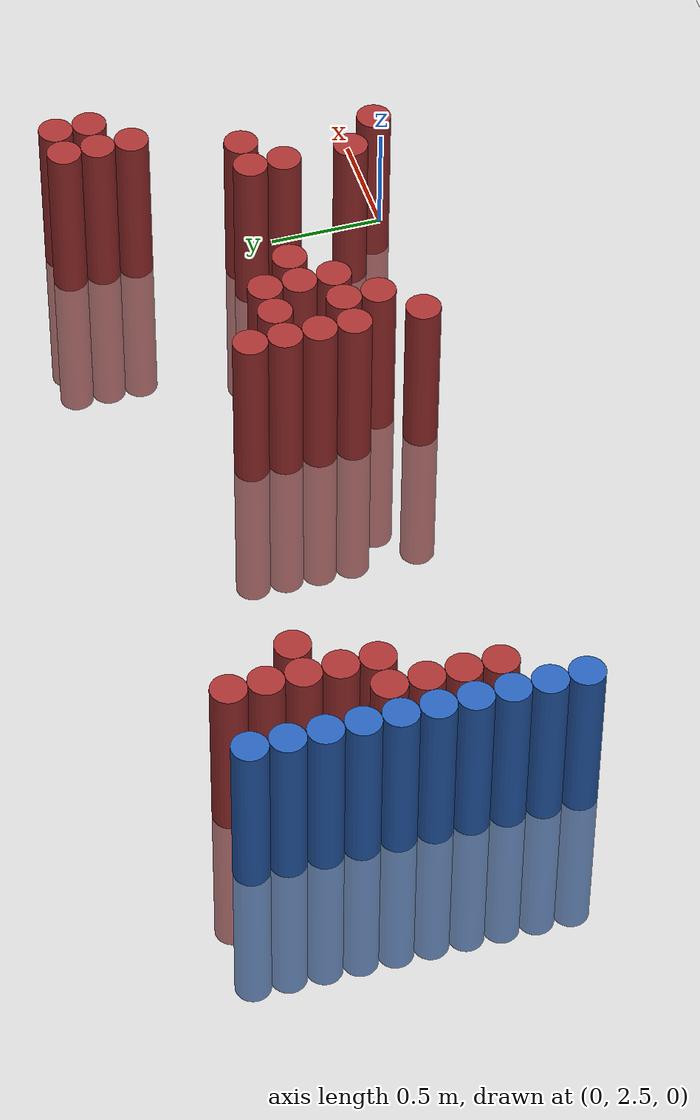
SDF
<sdf version="1.6">
 <world name="default">
  <model name="ground_plane">
   <static>1</static>
   <link name="link">
    <collision name="collision">
     <geometry><plane><normal>0 0 1</normal><size>100 100</size></plane></geometry>
     <surface><friction><ode><mu>100</mu><mu2>50</mu2></ode></friction></surface>
    </collision>
    <visual name="visual">
     <cast_shadows>0</cast_shadows>
     <geometry><plane><normal>0 0 1</normal><size>100 100</size></plane></geometry>
     <material>
      <script><uri>file://media/materials/scripts/gazebo.material</uri><name>Gazebo/Grey</name></script>
     </material>
    </visual>
   </link>
  </model>
  <model name="unit_cylinder_151">
   <static>1</static>
   <pose>-3.425000 2.725000 0.000000 0.000000 0.000000 0.000000</pose>
   <link name="link">
    <inertial>
     <mass>1</mass>
     <inertia><ixx>0.145833</ixx><ixy>0</ixy><ixz>0</ixz><iyy>0.145833</iyy><iyz>0</iyz><izz>0.125</izz></inertia>
    </inertial>
    <collision name="collision">
     <geometry><cylinder><radius>0.075000</radius><length>1.5</length></cylinder></geometry>
    </collision>
    <visual name="visual">
     <geometry><cylinder><radius>0.075000</radius><length>1.5</length></cylinder></geometry>
     <material>
      <ambient>0.152000 0.379000 0.720000 1</ambient>
      <diffuse>0.152000 0.379000 0.720000 1</diffuse>
     </material>
     <material>
      <script><name>Gazebo/Grey</name><uri>file://media/materials/scripts/gazebo.material</uri></script>
     </material>
    </visual>
   </link>
  </model>
  <model name="unit_cylinder_153">
   <static>1</static>
   <pose>-3.425000 2.875000 0.000000 0.000000 0.000000 0.000000</pose>
   <link name="link">
    <inertial>
     <mass>1</mass>
     <inertia><ixx>0.145833</ixx><ixy>0</ixy><ixz>0</ixz><iyy>0.145833</iyy><iyz>0</iyz><izz>0.125</izz></inertia>
    </inertial>
    <collision name="collision">
     <geometry><cylinder><radius>0.075000</radius><length>1.5</length></cylinder></geometry>
    </collision>
    <visual name="visual">
     <geometry><cylinder><radius>0.075000</radius><length>1.5</length></cylinder></geometry>
     <material>
      <ambient>0.152000 0.379000 0.720000 1</ambient>
      <diffuse>0.152000 0.379000 0.720000 1</diffuse>
     </material>
     <material>
      <script><name>Gazebo/Grey</name><uri>file://media/materials/scripts/gazebo.material</uri></script>
     </material>
    </visual>
   </link>
  </model>
  <model name="unit_cylinder_155">
   <static>1</static>
   <pose>-3.425000 3.025000 0.000000 0.000000 0.000000 0.000000</pose>
   <link name="link">
    <inertial>
     <mass>1</mass>
     <inertia><ixx>0.145833</ixx><ixy>0</ixy><ixz>0</ixz><iyy>0.145833</iyy><iyz>0</iyz><izz>0.125</izz></inertia>
    </inertial>
    <collision name="collision">
     <geometry><cylinder><radius>0.075000</radius><length>1.5</length></cylinder></geometry>
    </collision>
    <visual name="visual">
     <geometry><cylinder><radius>0.075000</radius><length>1.5</length></cylinder></geometry>
     <material>
      <ambient>0.152000 0.379000 0.720000 1</ambient>
      <diffuse>0.152000 0.379000 0.720000 1</diffuse>
     </material>
     <material>
      <script><name>Gazebo/Grey</name><uri>file://media/materials/scripts/gazebo.material</uri></script>
     </material>
    </visual>
   </link>
  </model>
  <model name="unit_cylinder_157">
   <static>1</static>
   <pose>-3.425000 3.175000 0.000000 0.000000 0.000000 0.000000</pose>
   <link name="link">
    <inertial>
     <mass>1</mass>
     <inertia><ixx>0.145833</ixx><ixy>0</ixy><ixz>0</ixz><iyy>0.145833</iyy><iyz>0</iyz><izz>0.125</izz></inertia>
    </inertial>
    <collision name="collision">
     <geometry><cylinder><radius>0.075000</radius><length>1.5</length></cylinder></geometry>
    </collision>
    <visual name="visual">
     <geometry><cylinder><radius>0.075000</radius><length>1.5</length></cylinder></geometry>
     <material>
      <ambient>0.152000 0.379000 0.720000 1</ambient>
      <diffuse>0.152000 0.379000 0.720000 1</diffuse>
     </material>
     <material>
      <script><name>Gazebo/Grey</name><uri>file://media/materials/scripts/gazebo.material</uri></script>
     </material>
    </visual>
   </link>
  </model>
  <model name="unit_cylinder_159">
   <static>1</static>
   <pose>-3.425000 3.325000 0.000000 0.000000 0.000000 0.000000</pose>
   <link name="link">
    <inertial>
     <mass>1</mass>
     <inertia><ixx>0.145833</ixx><ixy>0</ixy><ixz>0</ixz><iyy>0.145833</iyy><iyz>0</iyz><izz>0.125</izz></inertia>
    </inertial>
    <collision name="collision">
     <geometry><cylinder><radius>0.075000</radius><length>1.5</length></cylinder></geometry>
    </collision>
    <visual name="visual">
     <geometry><cylinder><radius>0.075000</radius><length>1.5</length></cylinder></geometry>
     <material>
      <ambient>0.152000 0.379000 0.720000 1</ambient>
      <diffuse>0.152000 0.379000 0.720000 1</diffuse>
     </material>
     <material>
      <script><name>Gazebo/Grey</name><uri>file://media/materials/scripts/gazebo.material</uri></script>
     </material>
    </visual>
   </link>
  </model>
  <model name="unit_cylinder_161">
   <static>1</static>
   <pose>-3.425000 3.475000 0.000000 0.000000 0.000000 0.000000</pose>
   <link name="link">
    <inertial>
     <mass>1</mass>
     <inertia><ixx>0.145833</ixx><ixy>0</ixy><ixz>0</ixz><iyy>0.145833</iyy><iyz>0</iyz><izz>0.125</izz></inertia>
    </inertial>
    <collision name="collision">
     <geometry><cylinder><radius>0.075000</radius><length>1.5</length></cylinder></geometry>
    </collision>
    <visual name="visual">
     <geometry><cylinder><radius>0.075000</radius><length>1.5</length></cylinder></geometry>
     <material>
      <ambient>0.152000 0.379000 0.720000 1</ambient>
      <diffuse>0.152000 0.379000 0.720000 1</diffuse>
     </material>
     <material>
      <script><name>Gazebo/Grey</name><uri>file://media/materials/scripts/gazebo.material</uri></script>
     </material>
    </visual>
   </link>
  </model>
  <model name="unit_cylinder_163">
   <static>1</static>
   <pose>-3.425000 3.625000 0.000000 0.000000 0.000000 0.000000</pose>
   <link name="link">
    <inertial>
     <mass>1</mass>
     <inertia><ixx>0.145833</ixx><ixy>0</ixy><ixz>0</ixz><iyy>0.145833</iyy><iyz>0</iyz><izz>0.125</izz></inertia>
    </inertial>
    <collision name="collision">
     <geometry><cylinder><radius>0.075000</radius><length>1.5</length></cylinder></geometry>
    </collision>
    <visual name="visual">
     <geometry><cylinder><radius>0.075000</radius><length>1.5</length></cylinder></geometry>
     <material>
      <ambient>0.152000 0.379000 0.720000 1</ambient>
      <diffuse>0.152000 0.379000 0.720000 1</diffuse>
     </material>
     <material>
      <script><name>Gazebo/Grey</name><uri>file://media/materials/scripts/gazebo.material</uri></script>
     </material>
    </visual>
   </link>
  </model>
  <model name="unit_cylinder_165">
   <static>1</static>
   <pose>-3.425000 3.775000 0.000000 0.000000 0.000000 0.000000</pose>
   <link name="link">
    <inertial>
     <mass>1</mass>
     <inertia><ixx>0.145833</ixx><ixy>0</ixy><ixz>0</ixz><iyy>0.145833</iyy><iyz>0</iyz><izz>0.125</izz></inertia>
    </inertial>
    <collision name="collision">
     <geometry><cylinder><radius>0.075000</radius><length>1.5</length></cylinder></geometry>
    </collision>
    <visual name="visual">
     <geometry><cylinder><radius>0.075000</radius><length>1.5</length></cylinder></geometry>
     <material>
      <ambient>0.152000 0.379000 0.720000 1</ambient>
      <diffuse>0.152000 0.379000 0.720000 1</diffuse>
     </material>
     <material>
      <script><name>Gazebo/Grey</name><uri>file://media/materials/scripts/gazebo.material</uri></script>
     </material>
    </visual>
   </link>
  </model>
  <model name="unit_cylinder_167">
   <static>1</static>
   <pose>-3.425000 3.925000 0.000000 0.000000 0.000000 0.000000</pose>
   <link name="link">
    <inertial>
     <mass>1</mass>
     <inertia><ixx>0.145833</ixx><ixy>0</ixy><ixz>0</ixz><iyy>0.145833</iyy><iyz>0</iyz><izz>0.125</izz></inertia>
    </inertial>
    <collision name="collision">
     <geometry><cylinder><radius>0.075000</radius><length>1.5</length></cylinder></geometry>
    </collision>
    <visual name="visual">
     <geometry><cylinder><radius>0.075000</radius><length>1.5</length></cylinder></geometry>
     <material>
      <ambient>0.152000 0.379000 0.720000 1</ambient>
      <diffuse>0.152000 0.379000 0.720000 1</diffuse>
     </material>
     <material>
      <script><name>Gazebo/Grey</name><uri>file://media/materials/scripts/gazebo.material</uri></script>
     </material>
    </visual>
   </link>
  </model>
  <model name="unit_cylinder_169">
   <static>1</static>
   <pose>-3.425000 4.075000 0.000000 0.000000 0.000000 0.000000</pose>
   <link name="link">
    <inertial>
     <mass>1</mass>
     <inertia><ixx>0.145833</ixx><ixy>0</ixy><ixz>0</ixz><iyy>0.145833</iyy><iyz>0</iyz><izz>0.125</izz></inertia>
    </inertial>
    <collision name="collision">
     <geometry><cylinder><radius>0.075000</radius><length>1.5</length></cylinder></geometry>
    </collision>
    <visual name="visual">
     <geometry><cylinder><radius>0.075000</radius><length>1.5</length></cylinder></geometry>
     <material>
      <ambient>0.152000 0.379000 0.720000 1</ambient>
      <diffuse>0.152000 0.379000 0.720000 1</diffuse>
     </material>
     <material>
      <script><name>Gazebo/Grey</name><uri>file://media/materials/scripts/gazebo.material</uri></script>
     </material>
    </visual>
   </link>
  </model>
  <model name="unit_cylinder_239">
   <static>1</static>
   <pose>-3.425000 2.725000 0.000000 0.000000 0.000000 0.000000</pose>
   <link name="link">
    <inertial>
     <mass>1</mass>
     <inertia><ixx>0.145833</ixx><ixy>0</ixy><ixz>0</ixz><iyy>0.145833</iyy><iyz>0</iyz><izz>0.125</izz></inertia>
    </inertial>
    <collision name="collision">
     <geometry><cylinder><radius>0.075000</radius><length>1.5</length></cylinder></geometry>
    </collision>
    <visual name="visual">
     <geometry><cylinder><radius>0.075000</radius><length>1.5</length></cylinder></geometry>
     <material>
      <ambient>0.152000 0.379000 0.720000 1</ambient>
      <diffuse>0.152000 0.379000 0.720000 1</diffuse>
     </material>
     <material>
      <script><name>Gazebo/Grey</name><uri>file://media/materials/scripts/gazebo.material</uri></script>
     </material>
    </visual>
   </link>
  </model>
  <model name="unit_cylinder_240">
   <static>1</static>
   <pose>-3.425000 2.875000 0.000000 0.000000 0.000000 0.000000</pose>
   <link name="link">
    <inertial>
     <mass>1</mass>
     <inertia><ixx>0.145833</ixx><ixy>0</ixy><ixz>0</ixz><iyy>0.145833</iyy><iyz>0</iyz><izz>0.125</izz></inertia>
    </inertial>
    <collision name="collision">
     <geometry><cylinder><radius>0.075000</radius><length>1.5</length></cylinder></geometry>
    </collision>
    <visual name="visual">
     <geometry><cylinder><radius>0.075000</radius><length>1.5</length></cylinder></geometry>
     <material>
      <ambient>0.152000 0.379000 0.720000 1</ambient>
      <diffuse>0.152000 0.379000 0.720000 1</diffuse>
     </material>
     <material>
      <script><name>Gazebo/Grey</name><uri>file://media/materials/scripts/gazebo.material</uri></script>
     </material>
    </visual>
   </link>
  </model>
  <model name="unit_cylinder_241">
   <static>1</static>
   <pose>-3.425000 3.025000 0.000000 0.000000 0.000000 0.000000</pose>
   <link name="link">
    <inertial>
     <mass>1</mass>
     <inertia><ixx>0.145833</ixx><ixy>0</ixy><ixz>0</ixz><iyy>0.145833</iyy><iyz>0</iyz><izz>0.125</izz></inertia>
    </inertial>
    <collision name="collision">
     <geometry><cylinder><radius>0.075000</radius><length>1.5</length></cylinder></geometry>
    </collision>
    <visual name="visual">
     <geometry><cylinder><radius>0.075000</radius><length>1.5</length></cylinder></geometry>
     <material>
      <ambient>0.152000 0.379000 0.720000 1</ambient>
      <diffuse>0.152000 0.379000 0.720000 1</diffuse>
     </material>
     <material>
      <script><name>Gazebo/Grey</name><uri>file://media/materials/scripts/gazebo.material</uri></script>
     </material>
    </visual>
   </link>
  </model>
  <model name="unit_cylinder_242">
   <static>1</static>
   <pose>-3.425000 3.175000 0.000000 0.000000 0.000000 0.000000</pose>
   <link name="link">
    <inertial>
     <mass>1</mass>
     <inertia><ixx>0.145833</ixx><ixy>0</ixy><ixz>0</ixz><iyy>0.145833</iyy><iyz>0</iyz><izz>0.125</izz></inertia>
    </inertial>
    <collision name="collision">
     <geometry><cylinder><radius>0.075000</radius><length>1.5</length></cylinder></geometry>
    </collision>
    <visual name="visual">
     <geometry><cylinder><radius>0.075000</radius><length>1.5</length></cylinder></geometry>
     <material>
      <ambient>0.152000 0.379000 0.720000 1</ambient>
      <diffuse>0.152000 0.379000 0.720000 1</diffuse>
     </material>
     <material>
      <script><name>Gazebo/Grey</name><uri>file://media/materials/scripts/gazebo.material</uri></script>
     </material>
    </visual>
   </link>
  </model>
  <model name="unit_cylinder_243">
   <static>1</static>
   <pose>-3.425000 3.325000 0.000000 0.000000 0.000000 0.000000</pose>
   <link name="link">
    <inertial>
     <mass>1</mass>
     <inertia><ixx>0.145833</ixx><ixy>0</ixy><ixz>0</ixz><iyy>0.145833</iyy><iyz>0</iyz><izz>0.125</izz></inertia>
    </inertial>
    <collision name="collision">
     <geometry><cylinder><radius>0.075000</radius><length>1.5</length></cylinder></geometry>
    </collision>
    <visual name="visual">
     <geometry><cylinder><radius>0.075000</radius><length>1.5</length></cylinder></geometry>
     <material>
      <ambient>0.152000 0.379000 0.720000 1</ambient>
      <diffuse>0.152000 0.379000 0.720000 1</diffuse>
     </material>
     <material>
      <script><name>Gazebo/Grey</name><uri>file://media/materials/scripts/gazebo.material</uri></script>
     </material>
    </visual>
   </link>
  </model>
  <model name="unit_cylinder_244">
   <static>1</static>
   <pose>-3.425000 3.475000 0.000000 0.000000 0.000000 0.000000</pose>
   <link name="link">
    <inertial>
     <mass>1</mass>
     <inertia><ixx>0.145833</ixx><ixy>0</ixy><ixz>0</ixz><iyy>0.145833</iyy><iyz>0</iyz><izz>0.125</izz></inertia>
    </inertial>
    <collision name="collision">
     <geometry><cylinder><radius>0.075000</radius><length>1.5</length></cylinder></geometry>
    </collision>
    <visual name="visual">
     <geometry><cylinder><radius>0.075000</radius><length>1.5</length></cylinder></geometry>
     <material>
      <ambient>0.152000 0.379000 0.720000 1</ambient>
      <diffuse>0.152000 0.379000 0.720000 1</diffuse>
     </material>
     <material>
      <script><name>Gazebo/Grey</name><uri>file://media/materials/scripts/gazebo.material</uri></script>
     </material>
    </visual>
   </link>
  </model>
  <model name="unit_cylinder_245">
   <static>1</static>
   <pose>-3.425000 3.625000 0.000000 0.000000 0.000000 0.000000</pose>
   <link name="link">
    <inertial>
     <mass>1</mass>
     <inertia><ixx>0.145833</ixx><ixy>0</ixy><ixz>0</ixz><iyy>0.145833</iyy><iyz>0</iyz><izz>0.125</izz></inertia>
    </inertial>
    <collision name="collision">
     <geometry><cylinder><radius>0.075000</radius><length>1.5</length></cylinder></geometry>
    </collision>
    <visual name="visual">
     <geometry><cylinder><radius>0.075000</radius><length>1.5</length></cylinder></geometry>
     <material>
      <ambient>0.152000 0.379000 0.720000 1</ambient>
      <diffuse>0.152000 0.379000 0.720000 1</diffuse>
     </material>
     <material>
      <script><name>Gazebo/Grey</name><uri>file://media/materials/scripts/gazebo.material</uri></script>
     </material>
    </visual>
   </link>
  </model>
  <model name="unit_cylinder_246">
   <static>1</static>
   <pose>-3.425000 3.775000 0.000000 0.000000 0.000000 0.000000</pose>
   <link name="link">
    <inertial>
     <mass>1</mass>
     <inertia><ixx>0.145833</ixx><ixy>0</ixy><ixz>0</ixz><iyy>0.145833</iyy><iyz>0</iyz><izz>0.125</izz></inertia>
    </inertial>
    <collision name="collision">
     <geometry><cylinder><radius>0.075000</radius><length>1.5</length></cylinder></geometry>
    </collision>
    <visual name="visual">
     <geometry><cylinder><radius>0.075000</radius><length>1.5</length></cylinder></geometry>
     <material>
      <ambient>0.152000 0.379000 0.720000 1</ambient>
      <diffuse>0.152000 0.379000 0.720000 1</diffuse>
     </material>
     <material>
      <script><name>Gazebo/Grey</name><uri>file://media/materials/scripts/gazebo.material</uri></script>
     </material>
    </visual>
   </link>
  </model>
  <model name="unit_cylinder_247">
   <static>1</static>
   <pose>-3.425000 3.925000 0.000000 0.000000 0.000000 0.000000</pose>
   <link name="link">
    <inertial>
     <mass>1</mass>
     <inertia><ixx>0.145833</ixx><ixy>0</ixy><ixz>0</ixz><iyy>0.145833</iyy><iyz>0</iyz><izz>0.125</izz></inertia>
    </inertial>
    <collision name="collision">
     <geometry><cylinder><radius>0.075000</radius><length>1.5</length></cylinder></geometry>
    </collision>
    <visual name="visual">
     <geometry><cylinder><radius>0.075000</radius><length>1.5</length></cylinder></geometry>
     <material>
      <ambient>0.152000 0.379000 0.720000 1</ambient>
      <diffuse>0.152000 0.379000 0.720000 1</diffuse>
     </material>
     <material>
      <script><name>Gazebo/Grey</name><uri>file://media/materials/scripts/gazebo.material</uri></script>
     </material>
    </visual>
   </link>
  </model>
  <model name="unit_cylinder_248">
   <static>1</static>
   <pose>-3.425000 4.075000 0.000000 0.000000 0.000000 0.000000</pose>
   <link name="link">
    <inertial>
     <mass>1</mass>
     <inertia><ixx>0.145833</ixx><ixy>0</ixy><ixz>0</ixz><iyy>0.145833</iyy><iyz>0</iyz><izz>0.125</izz></inertia>
    </inertial>
    <collision name="collision">
     <geometry><cylinder><radius>0.075000</radius><length>1.5</length></cylinder></geometry>
    </collision>
    <visual name="visual">
     <geometry><cylinder><radius>0.075000</radius><length>1.5</length></cylinder></geometry>
     <material>
      <ambient>0.152000 0.379000 0.720000 1</ambient>
      <diffuse>0.152000 0.379000 0.720000 1</diffuse>
     </material>
     <material>
      <script><name>Gazebo/Grey</name><uri>file://media/materials/scripts/gazebo.material</uri></script>
     </material>
    </visual>
   </link>
  </model>
  <model name="unit_cylinder_272">
   <static>1</static>
   <pose>-3.275000 3.025000 0.000000 0.000000 0.000000 0.000000</pose>
   <link name="link">
    <inertial>
     <mass>1</mass>
     <inertia><ixx>0.145833</ixx><ixy>0</ixy><ixz>0</ixz><iyy>0.145833</iyy><iyz>0</iyz><izz>0.125</izz></inertia>
    </inertial>
    <collision name="collision">
     <geometry><cylinder><radius>0.075000</radius><length>1.5</length></cylinder></geometry>
    </collision>
    <visual name="visual">
     <geometry><cylinder><radius>0.075000</radius><length>1.5</length></cylinder></geometry>
     <material>
      <ambient>0.648000 0.192000 0.192000 1</ambient>
      <diffuse>0.648000 0.192000 0.192000 1</diffuse>
     </material>
     <material>
      <script><name>Gazebo/Grey</name><uri>file://media/materials/scripts/gazebo.material</uri></script>
     </material>
    </visual>
   </link>
  </model>
  <model name="unit_cylinder_273">
   <static>1</static>
   <pose>-3.275000 3.175000 0.000000 0.000000 0.000000 0.000000</pose>
   <link name="link">
    <inertial>
     <mass>1</mass>
     <inertia><ixx>0.145833</ixx><ixy>0</ixy><ixz>0</ixz><iyy>0.145833</iyy><iyz>0</iyz><izz>0.125</izz></inertia>
    </inertial>
    <collision name="collision">
     <geometry><cylinder><radius>0.075000</radius><length>1.5</length></cylinder></geometry>
    </collision>
    <visual name="visual">
     <geometry><cylinder><radius>0.075000</radius><length>1.5</length></cylinder></geometry>
     <material>
      <ambient>0.648000 0.192000 0.192000 1</ambient>
      <diffuse>0.648000 0.192000 0.192000 1</diffuse>
     </material>
     <material>
      <script><name>Gazebo/Grey</name><uri>file://media/materials/scripts/gazebo.material</uri></script>
     </material>
    </visual>
   </link>
  </model>
  <model name="unit_cylinder_274">
   <static>1</static>
   <pose>-3.275000 3.325000 0.000000 0.000000 0.000000 0.000000</pose>
   <link name="link">
    <inertial>
     <mass>1</mass>
     <inertia><ixx>0.145833</ixx><ixy>0</ixy><ixz>0</ixz><iyy>0.145833</iyy><iyz>0</iyz><izz>0.125</izz></inertia>
    </inertial>
    <collision name="collision">
     <geometry><cylinder><radius>0.075000</radius><length>1.5</length></cylinder></geometry>
    </collision>
    <visual name="visual">
     <geometry><cylinder><radius>0.075000</radius><length>1.5</length></cylinder></geometry>
     <material>
      <ambient>0.648000 0.192000 0.192000 1</ambient>
      <diffuse>0.648000 0.192000 0.192000 1</diffuse>
     </material>
     <material>
      <script><name>Gazebo/Grey</name><uri>file://media/materials/scripts/gazebo.material</uri></script>
     </material>
    </visual>
   </link>
  </model>
  <model name="unit_cylinder_275">
   <static>1</static>
   <pose>-3.275000 3.475000 0.000000 0.000000 0.000000 0.000000</pose>
   <link name="link">
    <inertial>
     <mass>1</mass>
     <inertia><ixx>0.145833</ixx><ixy>0</ixy><ixz>0</ixz><iyy>0.145833</iyy><iyz>0</iyz><izz>0.125</izz></inertia>
    </inertial>
    <collision name="collision">
     <geometry><cylinder><radius>0.075000</radius><length>1.5</length></cylinder></geometry>
    </collision>
    <visual name="visual">
     <geometry><cylinder><radius>0.075000</radius><length>1.5</length></cylinder></geometry>
     <material>
      <ambient>0.648000 0.192000 0.192000 1</ambient>
      <diffuse>0.648000 0.192000 0.192000 1</diffuse>
     </material>
     <material>
      <script><name>Gazebo/Grey</name><uri>file://media/materials/scripts/gazebo.material</uri></script>
     </material>
    </visual>
   </link>
  </model>
  <model name="unit_cylinder_283">
   <static>1</static>
   <pose>-3.125000 3.475000 0.000000 0.000000 0.000000 0.000000</pose>
   <link name="link">
    <inertial>
     <mass>1</mass>
     <inertia><ixx>0.145833</ixx><ixy>0</ixy><ixz>0</ixz><iyy>0.145833</iyy><iyz>0</iyz><izz>0.125</izz></inertia>
    </inertial>
    <collision name="collision">
     <geometry><cylinder><radius>0.075000</radius><length>1.5</length></cylinder></geometry>
    </collision>
    <visual name="visual">
     <geometry><cylinder><radius>0.075000</radius><length>1.5</length></cylinder></geometry>
     <material>
      <ambient>0.648000 0.192000 0.192000 1</ambient>
      <diffuse>0.648000 0.192000 0.192000 1</diffuse>
     </material>
     <material>
      <script><name>Gazebo/Grey</name><uri>file://media/materials/scripts/gazebo.material</uri></script>
     </material>
    </visual>
   </link>
  </model>
  <model name="unit_cylinder_284">
   <static>1</static>
   <pose>-3.125000 3.625000 0.000000 0.000000 0.000000 0.000000</pose>
   <link name="link">
    <inertial>
     <mass>1</mass>
     <inertia><ixx>0.145833</ixx><ixy>0</ixy><ixz>0</ixz><iyy>0.145833</iyy><iyz>0</iyz><izz>0.125</izz></inertia>
    </inertial>
    <collision name="collision">
     <geometry><cylinder><radius>0.075000</radius><length>1.5</length></cylinder></geometry>
    </collision>
    <visual name="visual">
     <geometry><cylinder><radius>0.075000</radius><length>1.5</length></cylinder></geometry>
     <material>
      <ambient>0.648000 0.192000 0.192000 1</ambient>
      <diffuse>0.648000 0.192000 0.192000 1</diffuse>
     </material>
     <material>
      <script><name>Gazebo/Grey</name><uri>file://media/materials/scripts/gazebo.material</uri></script>
     </material>
    </visual>
   </link>
  </model>
  <model name="unit_cylinder_285">
   <static>1</static>
   <pose>-3.125000 3.775000 0.000000 0.000000 0.000000 0.000000</pose>
   <link name="link">
    <inertial>
     <mass>1</mass>
     <inertia><ixx>0.145833</ixx><ixy>0</ixy><ixz>0</ixz><iyy>0.145833</iyy><iyz>0</iyz><izz>0.125</izz></inertia>
    </inertial>
    <collision name="collision">
     <geometry><cylinder><radius>0.075000</radius><length>1.5</length></cylinder></geometry>
    </collision>
    <visual name="visual">
     <geometry><cylinder><radius>0.075000</radius><length>1.5</length></cylinder></geometry>
     <material>
      <ambient>0.648000 0.192000 0.192000 1</ambient>
      <diffuse>0.648000 0.192000 0.192000 1</diffuse>
     </material>
     <material>
      <script><name>Gazebo/Grey</name><uri>file://media/materials/scripts/gazebo.material</uri></script>
     </material>
    </visual>
   </link>
  </model>
  <model name="unit_cylinder_286">
   <static>1</static>
   <pose>-3.125000 3.925000 0.000000 0.000000 0.000000 0.000000</pose>
   <link name="link">
    <inertial>
     <mass>1</mass>
     <inertia><ixx>0.145833</ixx><ixy>0</ixy><ixz>0</ixz><iyy>0.145833</iyy><iyz>0</iyz><izz>0.125</izz></inertia>
    </inertial>
    <collision name="collision">
     <geometry><cylinder><radius>0.075000</radius><length>1.5</length></cylinder></geometry>
    </collision>
    <visual name="visual">
     <geometry><cylinder><radius>0.075000</radius><length>1.5</length></cylinder></geometry>
     <material>
      <ambient>0.648000 0.192000 0.192000 1</ambient>
      <diffuse>0.648000 0.192000 0.192000 1</diffuse>
     </material>
     <material>
      <script><name>Gazebo/Grey</name><uri>file://media/materials/scripts/gazebo.material</uri></script>
     </material>
    </visual>
   </link>
  </model>
  <model name="unit_cylinder_287">
   <static>1</static>
   <pose>-3.125000 4.075000 0.000000 0.000000 0.000000 0.000000</pose>
   <link name="link">
    <inertial>
     <mass>1</mass>
     <inertia><ixx>0.145833</ixx><ixy>0</ixy><ixz>0</ixz><iyy>0.145833</iyy><iyz>0</iyz><izz>0.125</izz></inertia>
    </inertial>
    <collision name="collision">
     <geometry><cylinder><radius>0.075000</radius><length>1.5</length></cylinder></geometry>
    </collision>
    <visual name="visual">
     <geometry><cylinder><radius>0.075000</radius><length>1.5</length></cylinder></geometry>
     <material>
      <ambient>0.648000 0.192000 0.192000 1</ambient>
      <diffuse>0.648000 0.192000 0.192000 1</diffuse>
     </material>
     <material>
      <script><name>Gazebo/Grey</name><uri>file://media/materials/scripts/gazebo.material</uri></script>
     </material>
    </visual>
   </link>
  </model>
  <model name="unit_cylinder_293">
   <static>1</static>
   <pose>-2.975000 3.775000 0.000000 0.000000 0.000000 0.000000</pose>
   <link name="link">
    <inertial>
     <mass>1</mass>
     <inertia><ixx>0.145833</ixx><ixy>0</ixy><ixz>0</ixz><iyy>0.145833</iyy><iyz>0</iyz><izz>0.125</izz></inertia>
    </inertial>
    <collision name="collision">
     <geometry><cylinder><radius>0.075000</radius><length>1.5</length></cylinder></geometry>
    </collision>
    <visual name="visual">
     <geometry><cylinder><radius>0.075000</radius><length>1.5</length></cylinder></geometry>
     <material>
      <ambient>0.648000 0.192000 0.192000 1</ambient>
      <diffuse>0.648000 0.192000 0.192000 1</diffuse>
     </material>
     <material>
      <script><name>Gazebo/Grey</name><uri>file://media/materials/scripts/gazebo.material</uri></script>
     </material>
    </visual>
   </link>
  </model>
  <model name="unit_cylinder_312">
   <static>1</static>
   <pose>-1.325000 2.725000 0.000000 0.000000 0.000000 0.000000</pose>
   <link name="link">
    <inertial>
     <mass>1</mass>
     <inertia><ixx>0.145833</ixx><ixy>0</ixy><ixz>0</ixz><iyy>0.145833</iyy><iyz>0</iyz><izz>0.125</izz></inertia>
    </inertial>
    <collision name="collision">
     <geometry><cylinder><radius>0.075000</radius><length>1.5</length></cylinder></geometry>
    </collision>
    <visual name="visual">
     <geometry><cylinder><radius>0.075000</radius><length>1.5</length></cylinder></geometry>
     <material>
      <ambient>0.648000 0.192000 0.192000 1</ambient>
      <diffuse>0.648000 0.192000 0.192000 1</diffuse>
     </material>
     <material>
      <script><name>Gazebo/Grey</name><uri>file://media/materials/scripts/gazebo.material</uri></script>
     </material>
    </visual>
   </link>
  </model>
  <model name="unit_cylinder_313">
   <static>1</static>
   <pose>-1.325000 3.025000 0.000000 0.000000 0.000000 0.000000</pose>
   <link name="link">
    <inertial>
     <mass>1</mass>
     <inertia><ixx>0.145833</ixx><ixy>0</ixy><ixz>0</ixz><iyy>0.145833</iyy><iyz>0</iyz><izz>0.125</izz></inertia>
    </inertial>
    <collision name="collision">
     <geometry><cylinder><radius>0.075000</radius><length>1.5</length></cylinder></geometry>
    </collision>
    <visual name="visual">
     <geometry><cylinder><radius>0.075000</radius><length>1.5</length></cylinder></geometry>
     <material>
      <ambient>0.648000 0.192000 0.192000 1</ambient>
      <diffuse>0.648000 0.192000 0.192000 1</diffuse>
     </material>
     <material>
      <script><name>Gazebo/Grey</name><uri>file://media/materials/scripts/gazebo.material</uri></script>
     </material>
    </visual>
   </link>
  </model>
  <model name="unit_cylinder_314">
   <static>1</static>
   <pose>-1.325000 3.175000 0.000000 0.000000 0.000000 0.000000</pose>
   <link name="link">
    <inertial>
     <mass>1</mass>
     <inertia><ixx>0.145833</ixx><ixy>0</ixy><ixz>0</ixz><iyy>0.145833</iyy><iyz>0</iyz><izz>0.125</izz></inertia>
    </inertial>
    <collision name="collision">
     <geometry><cylinder><radius>0.075000</radius><length>1.5</length></cylinder></geometry>
    </collision>
    <visual name="visual">
     <geometry><cylinder><radius>0.075000</radius><length>1.5</length></cylinder></geometry>
     <material>
      <ambient>0.648000 0.192000 0.192000 1</ambient>
      <diffuse>0.648000 0.192000 0.192000 1</diffuse>
     </material>
     <material>
      <script><name>Gazebo/Grey</name><uri>file://media/materials/scripts/gazebo.material</uri></script>
     </material>
    </visual>
   </link>
  </model>
  <model name="unit_cylinder_315">
   <static>1</static>
   <pose>-1.325000 3.325000 0.000000 0.000000 0.000000 0.000000</pose>
   <link name="link">
    <inertial>
     <mass>1</mass>
     <inertia><ixx>0.145833</ixx><ixy>0</ixy><ixz>0</ixz><iyy>0.145833</iyy><iyz>0</iyz><izz>0.125</izz></inertia>
    </inertial>
    <collision name="collision">
     <geometry><cylinder><radius>0.075000</radius><length>1.5</length></cylinder></geometry>
    </collision>
    <visual name="visual">
     <geometry><cylinder><radius>0.075000</radius><length>1.5</length></cylinder></geometry>
     <material>
      <ambient>0.648000 0.192000 0.192000 1</ambient>
      <diffuse>0.648000 0.192000 0.192000 1</diffuse>
     </material>
     <material>
      <script><name>Gazebo/Grey</name><uri>file://media/materials/scripts/gazebo.material</uri></script>
     </material>
    </visual>
   </link>
  </model>
  <model name="unit_cylinder_316">
   <static>1</static>
   <pose>-1.325000 3.475000 0.000000 0.000000 0.000000 0.000000</pose>
   <link name="link">
    <inertial>
     <mass>1</mass>
     <inertia><ixx>0.145833</ixx><ixy>0</ixy><ixz>0</ixz><iyy>0.145833</iyy><iyz>0</iyz><izz>0.125</izz></inertia>
    </inertial>
    <collision name="collision">
     <geometry><cylinder><radius>0.075000</radius><length>1.5</length></cylinder></geometry>
    </collision>
    <visual name="visual">
     <geometry><cylinder><radius>0.075000</radius><length>1.5</length></cylinder></geometry>
     <material>
      <ambient>0.648000 0.192000 0.192000 1</ambient>
      <diffuse>0.648000 0.192000 0.192000 1</diffuse>
     </material>
     <material>
      <script><name>Gazebo/Grey</name><uri>file://media/materials/scripts/gazebo.material</uri></script>
     </material>
    </visual>
   </link>
  </model>
  <model name="unit_cylinder_321">
   <static>1</static>
   <pose>-1.175000 2.875000 0.000000 0.000000 0.000000 0.000000</pose>
   <link name="link">
    <inertial>
     <mass>1</mass>
     <inertia><ixx>0.145833</ixx><ixy>0</ixy><ixz>0</ixz><iyy>0.145833</iyy><iyz>0</iyz><izz>0.125</izz></inertia>
    </inertial>
    <collision name="collision">
     <geometry><cylinder><radius>0.075000</radius><length>1.5</length></cylinder></geometry>
    </collision>
    <visual name="visual">
     <geometry><cylinder><radius>0.075000</radius><length>1.5</length></cylinder></geometry>
     <material>
      <ambient>0.648000 0.192000 0.192000 1</ambient>
      <diffuse>0.648000 0.192000 0.192000 1</diffuse>
     </material>
     <material>
      <script><name>Gazebo/Grey</name><uri>file://media/materials/scripts/gazebo.material</uri></script>
     </material>
    </visual>
   </link>
  </model>
  <model name="unit_cylinder_322">
   <static>1</static>
   <pose>-1.175000 3.025000 0.000000 0.000000 0.000000 0.000000</pose>
   <link name="link">
    <inertial>
     <mass>1</mass>
     <inertia><ixx>0.145833</ixx><ixy>0</ixy><ixz>0</ixz><iyy>0.145833</iyy><iyz>0</iyz><izz>0.125</izz></inertia>
    </inertial>
    <collision name="collision">
     <geometry><cylinder><radius>0.075000</radius><length>1.5</length></cylinder></geometry>
    </collision>
    <visual name="visual">
     <geometry><cylinder><radius>0.075000</radius><length>1.5</length></cylinder></geometry>
     <material>
      <ambient>0.648000 0.192000 0.192000 1</ambient>
      <diffuse>0.648000 0.192000 0.192000 1</diffuse>
     </material>
     <material>
      <script><name>Gazebo/Grey</name><uri>file://media/materials/scripts/gazebo.material</uri></script>
     </material>
    </visual>
   </link>
  </model>
  <model name="unit_cylinder_323">
   <static>1</static>
   <pose>-1.175000 3.325000 0.000000 0.000000 0.000000 0.000000</pose>
   <link name="link">
    <inertial>
     <mass>1</mass>
     <inertia><ixx>0.145833</ixx><ixy>0</ixy><ixz>0</ixz><iyy>0.145833</iyy><iyz>0</iyz><izz>0.125</izz></inertia>
    </inertial>
    <collision name="collision">
     <geometry><cylinder><radius>0.075000</radius><length>1.5</length></cylinder></geometry>
    </collision>
    <visual name="visual">
     <geometry><cylinder><radius>0.075000</radius><length>1.5</length></cylinder></geometry>
     <material>
      <ambient>0.648000 0.192000 0.192000 1</ambient>
      <diffuse>0.648000 0.192000 0.192000 1</diffuse>
     </material>
     <material>
      <script><name>Gazebo/Grey</name><uri>file://media/materials/scripts/gazebo.material</uri></script>
     </material>
    </visual>
   </link>
  </model>
  <model name="unit_cylinder_329">
   <static>1</static>
   <pose>-1.025000 3.025000 0.000000 0.000000 0.000000 0.000000</pose>
   <link name="link">
    <inertial>
     <mass>1</mass>
     <inertia><ixx>0.145833</ixx><ixy>0</ixy><ixz>0</ixz><iyy>0.145833</iyy><iyz>0</iyz><izz>0.125</izz></inertia>
    </inertial>
    <collision name="collision">
     <geometry><cylinder><radius>0.075000</radius><length>1.5</length></cylinder></geometry>
    </collision>
    <visual name="visual">
     <geometry><cylinder><radius>0.075000</radius><length>1.5</length></cylinder></geometry>
     <material>
      <ambient>0.648000 0.192000 0.192000 1</ambient>
      <diffuse>0.648000 0.192000 0.192000 1</diffuse>
     </material>
     <material>
      <script><name>Gazebo/Grey</name><uri>file://media/materials/scripts/gazebo.material</uri></script>
     </material>
    </visual>
   </link>
  </model>
  <model name="unit_cylinder_330">
   <static>1</static>
   <pose>-1.025000 3.175000 0.000000 0.000000 0.000000 0.000000</pose>
   <link name="link">
    <inertial>
     <mass>1</mass>
     <inertia><ixx>0.145833</ixx><ixy>0</ixy><ixz>0</ixz><iyy>0.145833</iyy><iyz>0</iyz><izz>0.125</izz></inertia>
    </inertial>
    <collision name="collision">
     <geometry><cylinder><radius>0.075000</radius><length>1.5</length></cylinder></geometry>
    </collision>
    <visual name="visual">
     <geometry><cylinder><radius>0.075000</radius><length>1.5</length></cylinder></geometry>
     <material>
      <ambient>0.648000 0.192000 0.192000 1</ambient>
      <diffuse>0.648000 0.192000 0.192000 1</diffuse>
     </material>
     <material>
      <script><name>Gazebo/Grey</name><uri>file://media/materials/scripts/gazebo.material</uri></script>
     </material>
    </visual>
   </link>
  </model>
  <model name="unit_cylinder_331">
   <static>1</static>
   <pose>-1.025000 3.325000 0.000000 0.000000 0.000000 0.000000</pose>
   <link name="link">
    <inertial>
     <mass>1</mass>
     <inertia><ixx>0.145833</ixx><ixy>0</ixy><ixz>0</ixz><iyy>0.145833</iyy><iyz>0</iyz><izz>0.125</izz></inertia>
    </inertial>
    <collision name="collision">
     <geometry><cylinder><radius>0.075000</radius><length>1.5</length></cylinder></geometry>
    </collision>
    <visual name="visual">
     <geometry><cylinder><radius>0.075000</radius><length>1.5</length></cylinder></geometry>
     <material>
      <ambient>0.648000 0.192000 0.192000 1</ambient>
      <diffuse>0.648000 0.192000 0.192000 1</diffuse>
     </material>
     <material>
      <script><name>Gazebo/Grey</name><uri>file://media/materials/scripts/gazebo.material</uri></script>
     </material>
    </visual>
   </link>
  </model>
  <model name="unit_cylinder_339">
   <static>1</static>
   <pose>-0.875000 3.175000 0.000000 0.000000 0.000000 0.000000</pose>
   <link name="link">
    <inertial>
     <mass>1</mass>
     <inertia><ixx>0.145833</ixx><ixy>0</ixy><ixz>0</ixz><iyy>0.145833</iyy><iyz>0</iyz><izz>0.125</izz></inertia>
    </inertial>
    <collision name="collision">
     <geometry><cylinder><radius>0.075000</radius><length>1.5</length></cylinder></geometry>
    </collision>
    <visual name="visual">
     <geometry><cylinder><radius>0.075000</radius><length>1.5</length></cylinder></geometry>
     <material>
      <ambient>0.648000 0.192000 0.192000 1</ambient>
      <diffuse>0.648000 0.192000 0.192000 1</diffuse>
     </material>
     <material>
      <script><name>Gazebo/Grey</name><uri>file://media/materials/scripts/gazebo.material</uri></script>
     </material>
    </visual>
   </link>
  </model>
  <model name="unit_cylinder_349">
   <static>1</static>
   <pose>-0.275000 2.725000 0.000000 0.000000 0.000000 0.000000</pose>
   <link name="link">
    <inertial>
     <mass>1</mass>
     <inertia><ixx>0.145833</ixx><ixy>0</ixy><ixz>0</ixz><iyy>0.145833</iyy><iyz>0</iyz><izz>0.125</izz></inertia>
    </inertial>
    <collision name="collision">
     <geometry><cylinder><radius>0.075000</radius><length>1.5</length></cylinder></geometry>
    </collision>
    <visual name="visual">
     <geometry><cylinder><radius>0.075000</radius><length>1.5</length></cylinder></geometry>
     <material>
      <ambient>0.648000 0.192000 0.192000 1</ambient>
      <diffuse>0.648000 0.192000 0.192000 1</diffuse>
     </material>
     <material>
      <script><name>Gazebo/Grey</name><uri>file://media/materials/scripts/gazebo.material</uri></script>
     </material>
    </visual>
   </link>
  </model>
  <model name="unit_cylinder_350">
   <static>1</static>
   <pose>-0.275000 3.025000 0.000000 0.000000 0.000000 0.000000</pose>
   <link name="link">
    <inertial>
     <mass>1</mass>
     <inertia><ixx>0.145833</ixx><ixy>0</ixy><ixz>0</ixz><iyy>0.145833</iyy><iyz>0</iyz><izz>0.125</izz></inertia>
    </inertial>
    <collision name="collision">
     <geometry><cylinder><radius>0.075000</radius><length>1.5</length></cylinder></geometry>
    </collision>
    <visual name="visual">
     <geometry><cylinder><radius>0.075000</radius><length>1.5</length></cylinder></geometry>
     <material>
      <ambient>0.648000 0.192000 0.192000 1</ambient>
      <diffuse>0.648000 0.192000 0.192000 1</diffuse>
     </material>
     <material>
      <script><name>Gazebo/Grey</name><uri>file://media/materials/scripts/gazebo.material</uri></script>
     </material>
    </visual>
   </link>
  </model>
  <model name="unit_cylinder_351">
   <static>1</static>
   <pose>-0.275000 3.175000 0.000000 0.000000 0.000000 0.000000</pose>
   <link name="link">
    <inertial>
     <mass>1</mass>
     <inertia><ixx>0.145833</ixx><ixy>0</ixy><ixz>0</ixz><iyy>0.145833</iyy><iyz>0</iyz><izz>0.125</izz></inertia>
    </inertial>
    <collision name="collision">
     <geometry><cylinder><radius>0.075000</radius><length>1.5</length></cylinder></geometry>
    </collision>
    <visual name="visual">
     <geometry><cylinder><radius>0.075000</radius><length>1.5</length></cylinder></geometry>
     <material>
      <ambient>0.648000 0.192000 0.192000 1</ambient>
      <diffuse>0.648000 0.192000 0.192000 1</diffuse>
     </material>
     <material>
      <script><name>Gazebo/Grey</name><uri>file://media/materials/scripts/gazebo.material</uri></script>
     </material>
    </visual>
   </link>
  </model>
  <model name="unit_cylinder_354">
   <static>1</static>
   <pose>-0.125000 2.575000 0.000000 0.000000 0.000000 0.000000</pose>
   <link name="link">
    <inertial>
     <mass>1</mass>
     <inertia><ixx>0.145833</ixx><ixy>0</ixy><ixz>0</ixz><iyy>0.145833</iyy><iyz>0</iyz><izz>0.125</izz></inertia>
    </inertial>
    <collision name="collision">
     <geometry><cylinder><radius>0.075000</radius><length>1.5</length></cylinder></geometry>
    </collision>
    <visual name="visual">
     <geometry><cylinder><radius>0.075000</radius><length>1.5</length></cylinder></geometry>
     <material>
      <ambient>0.648000 0.192000 0.192000 1</ambient>
      <diffuse>0.648000 0.192000 0.192000 1</diffuse>
     </material>
     <material>
      <script><name>Gazebo/Grey</name><uri>file://media/materials/scripts/gazebo.material</uri></script>
     </material>
    </visual>
   </link>
  </model>
  <model name="unit_cylinder_355">
   <static>1</static>
   <pose>-0.125000 3.175000 0.000000 0.000000 0.000000 0.000000</pose>
   <link name="link">
    <inertial>
     <mass>1</mass>
     <inertia><ixx>0.145833</ixx><ixy>0</ixy><ixz>0</ixz><iyy>0.145833</iyy><iyz>0</iyz><izz>0.125</izz></inertia>
    </inertial>
    <collision name="collision">
     <geometry><cylinder><radius>0.075000</radius><length>1.5</length></cylinder></geometry>
    </collision>
    <visual name="visual">
     <geometry><cylinder><radius>0.075000</radius><length>1.5</length></cylinder></geometry>
     <material>
      <ambient>0.648000 0.192000 0.192000 1</ambient>
      <diffuse>0.648000 0.192000 0.192000 1</diffuse>
     </material>
     <material>
      <script><name>Gazebo/Grey</name><uri>file://media/materials/scripts/gazebo.material</uri></script>
     </material>
    </visual>
   </link>
  </model>
  <model name="unit_cylinder_358">
   <static>1</static>
   <pose>0.025000 3.625000 0.000000 0.000000 0.000000 0.000000</pose>
   <link name="link">
    <inertial>
     <mass>1</mass>
     <inertia><ixx>0.145833</ixx><ixy>0</ixy><ixz>0</ixz><iyy>0.145833</iyy><iyz>0</iyz><izz>0.125</izz></inertia>
    </inertial>
    <collision name="collision">
     <geometry><cylinder><radius>0.075000</radius><length>1.5</length></cylinder></geometry>
    </collision>
    <visual name="visual">
     <geometry><cylinder><radius>0.075000</radius><length>1.5</length></cylinder></geometry>
     <material>
      <ambient>0.648000 0.192000 0.192000 1</ambient>
      <diffuse>0.648000 0.192000 0.192000 1</diffuse>
     </material>
     <material>
      <script><name>Gazebo/Grey</name><uri>file://media/materials/scripts/gazebo.material</uri></script>
     </material>
    </visual>
   </link>
  </model>
  <model name="unit_cylinder_359">
   <static>1</static>
   <pose>0.025000 3.775000 0.000000 0.000000 0.000000 0.000000</pose>
   <link name="link">
    <inertial>
     <mass>1</mass>
     <inertia><ixx>0.145833</ixx><ixy>0</ixy><ixz>0</ixz><iyy>0.145833</iyy><iyz>0</iyz><izz>0.125</izz></inertia>
    </inertial>
    <collision name="collision">
     <geometry><cylinder><radius>0.075000</radius><length>1.5</length></cylinder></geometry>
    </collision>
    <visual name="visual">
     <geometry><cylinder><radius>0.075000</radius><length>1.5</length></cylinder></geometry>
     <material>
      <ambient>0.648000 0.192000 0.192000 1</ambient>
      <diffuse>0.648000 0.192000 0.192000 1</diffuse>
     </material>
     <material>
      <script><name>Gazebo/Grey</name><uri>file://media/materials/scripts/gazebo.material</uri></script>
     </material>
    </visual>
   </link>
  </model>
  <model name="unit_cylinder_360">
   <static>1</static>
   <pose>0.025000 3.925000 0.000000 0.000000 0.000000 0.000000</pose>
   <link name="link">
    <inertial>
     <mass>1</mass>
     <inertia><ixx>0.145833</ixx><ixy>0</ixy><ixz>0</ixz><iyy>0.145833</iyy><iyz>0</iyz><izz>0.125</izz></inertia>
    </inertial>
    <collision name="collision">
     <geometry><cylinder><radius>0.075000</radius><length>1.5</length></cylinder></geometry>
    </collision>
    <visual name="visual">
     <geometry><cylinder><radius>0.075000</radius><length>1.5</length></cylinder></geometry>
     <material>
      <ambient>0.648000 0.192000 0.192000 1</ambient>
      <diffuse>0.648000 0.192000 0.192000 1</diffuse>
     </material>
     <material>
      <script><name>Gazebo/Grey</name><uri>file://media/materials/scripts/gazebo.material</uri></script>
     </material>
    </visual>
   </link>
  </model>
  <model name="unit_cylinder_364">
   <static>1</static>
   <pose>0.175000 3.775000 0.000000 0.000000 0.000000 0.000000</pose>
   <link name="link">
    <inertial>
     <mass>1</mass>
     <inertia><ixx>0.145833</ixx><ixy>0</ixy><ixz>0</ixz><iyy>0.145833</iyy><iyz>0</iyz><izz>0.125</izz></inertia>
    </inertial>
    <collision name="collision">
     <geometry><cylinder><radius>0.075000</radius><length>1.5</length></cylinder></geometry>
    </collision>
    <visual name="visual">
     <geometry><cylinder><radius>0.075000</radius><length>1.5</length></cylinder></geometry>
     <material>
      <ambient>0.648000 0.192000 0.192000 1</ambient>
      <diffuse>0.648000 0.192000 0.192000 1</diffuse>
     </material>
     <material>
      <script><name>Gazebo/Grey</name><uri>file://media/materials/scripts/gazebo.material</uri></script>
     </material>
    </visual>
   </link>
  </model>
  <model name="unit_cylinder_365">
   <static>1</static>
   <pose>0.175000 3.925000 0.000000 0.000000 0.000000 0.000000</pose>
   <link name="link">
    <inertial>
     <mass>1</mass>
     <inertia><ixx>0.145833</ixx><ixy>0</ixy><ixz>0</ixz><iyy>0.145833</iyy><iyz>0</iyz><izz>0.125</izz></inertia>
    </inertial>
    <collision name="collision">
     <geometry><cylinder><radius>0.075000</radius><length>1.5</length></cylinder></geometry>
    </collision>
    <visual name="visual">
     <geometry><cylinder><radius>0.075000</radius><length>1.5</length></cylinder></geometry>
     <material>
      <ambient>0.648000 0.192000 0.192000 1</ambient>
      <diffuse>0.648000 0.192000 0.192000 1</diffuse>
     </material>
     <material>
      <script><name>Gazebo/Grey</name><uri>file://media/materials/scripts/gazebo.material</uri></script>
     </material>
    </visual>
   </link>
  </model>
 </world>
</sdf>
